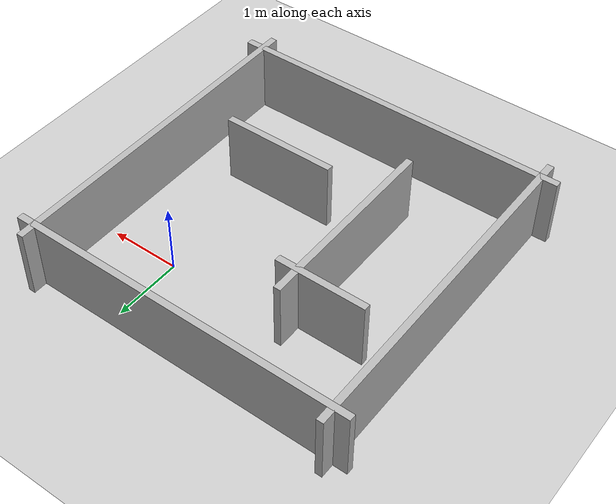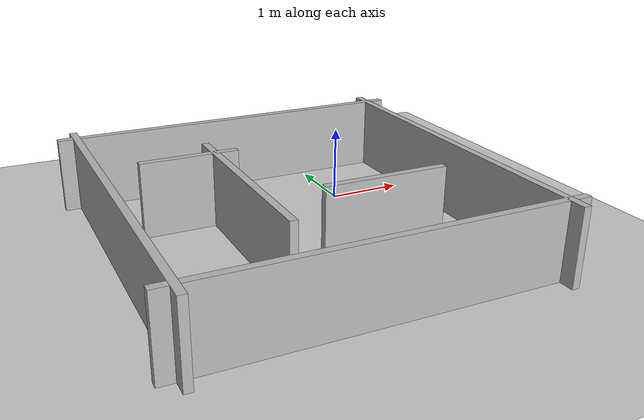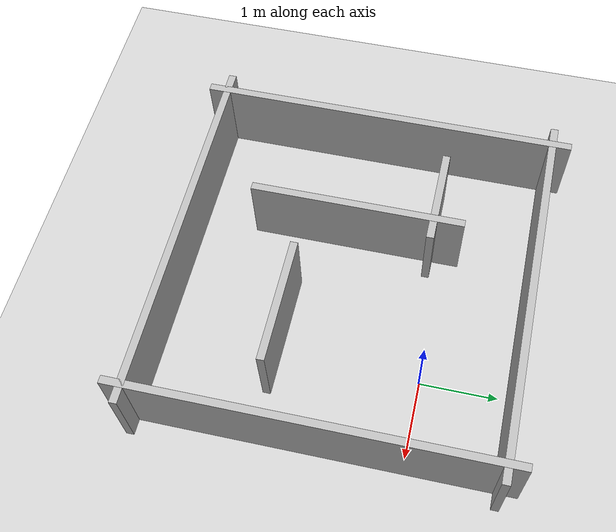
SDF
<sdf version="1.6">
  <world name="simple_course">
    <physics name="1ms" type="ignored">
      <max_step_size>0.01</max_step_size>
      <real_time_factor>1.0</real_time_factor>
    </physics>
    <plugin
      filename="gz-sim-physics-system"
      name="gz::sim::systems::Physics">
    </plugin>
    <plugin
      filename="gz-sim-user-commands-system"
      name="gz::sim::systems::UserCommands">
    </plugin>
    <plugin
      filename="gz-sim-scene-broadcaster-system"
      name="gz::sim::systems::SceneBroadcaster">
    </plugin>
    <plugin
      filename="gz-sim-sensors-system"
      name="gz::sim::systems::Sensors">
      <render_engine>ogre2</render_engine>
    </plugin>
    <plugin
      filename="gz-sim-imu-system"
      name="gz::sim::systems::Imu">  <!-- Added plugin for IMU sensor support -->
    </plugin>
    <plugin
      filename="gz-sim-contact-system"
      name="gz::sim::systems::Contact">
    </plugin>

    <light type="directional" name="sun">
      <cast_shadows>true</cast_shadows>
      <pose>2.5 2.5 10 0 0 0</pose>
      <diffuse>0.8 0.8 0.8 1</diffuse>
      <specular>0.2 0.2 0.2 1</specular>
      <attenuation>
        <range>1000</range>
        <constant>0.9</constant>
        <linear>0.01</linear>
        <quadratic>0.001</quadratic>
      </attenuation>
      <direction>-0.5 0.1 -0.9</direction>
    </light>

    <model name="ground_plane">
      <static>true</static>
      <link name="link">
        <collision name="collision">
          <geometry>
            <plane>
              <normal>0 0 1</normal>
              <size>20 20</size>
            </plane>
          </geometry>
        </collision>
        <visual name="visual">
          <geometry>
            <plane>
              <normal>0 0 1</normal>
              <size>20 20</size>
            </plane>
          </geometry>
          <material>
            <ambient>0.8 0.8 0.8 1</ambient>
            <diffuse>0.8 0.8 0.8 1</diffuse>
            <specular>0.8 0.8 0.8 1</specular>
          </material>
        </visual>
      </link>
    </model>

    <model name="north_wall">
      <static>true</static>
      <pose>-1.1 1.15 0.5 0 0 0</pose>
      <link name="link">
        <collision name="collision">
          <geometry>
            <box>
              <size>5.0 0.1 1.0</size>
            </box>
          </geometry>
        </collision>
        <visual name="visual">
          <geometry>
            <box>
              <size>5.0 0.1 1.0</size>
            </box>
          </geometry>
        </visual>
      </link>
    </model>

    <model name="south_wall">
      <static>true</static>
      <pose>-1.1 -3.35 0.5 0 0 0</pose>
      <link name="link">
        <collision name="collision">
          <geometry>
            <box>
              <size>5.0 0.1 1.0</size>
            </box>
          </geometry>
        </collision>
        <visual name="visual">
          <geometry>
            <box>
              <size>5.0 0.1 1.0</size>
            </box>
          </geometry>
        </visual>
      </link>
    </model>

    <model name="west_wall">
      <static>true</static>
      <pose>-3.35 -1.1 0.5 0 0 0</pose>
      <link name="link">
        <collision name="collision">
          <geometry>
            <box>
              <size>0.1 5.0 1.0</size>
            </box>
          </geometry>
        </collision>
        <visual name="visual">
          <geometry>
            <box>
              <size>0.1 5.0 1.0</size>
            </box>
          </geometry>
        </visual>
      </link>
    </model>

    <model name="east_wall">
      <static>true</static>
      <pose>1.15 -1.1 0.5 0 0 0</pose>
      <link name="link">
        <collision name="collision">
          <geometry>
            <box>
              <size>0.1 5.0 1.0</size>
            </box>
          </geometry>
        </collision>
        <visual name="visual">
          <geometry>
            <box>
              <size>0.1 5.0 1.0</size>
            </box>
          </geometry>
        </visual>
      </link>
    </model>

    <model name="vertical_barrier">
      <static>true</static>
      <pose>-1.85 -1.2 0.5 0 0 0</pose>
      <link name="link">
        <collision name="collision">
          <geometry>
            <box>
              <size>0.1 2.8 1.0</size>
            </box>
          </geometry>
        </collision>
        <visual name="visual">
          <geometry>
            <box>
              <size>0.1 2.8 1.0</size>
            </box>
          </geometry>
        </visual>
      </link>
    </model>

    <model name="upper_barrier">
      <static>true</static>
      <pose>-0.30 -1.85 0.5 0 0 0</pose>
      <link name="link">
        <collision name="collision">
          <geometry>
            <box>
              <size>1.65 0.1 1.0</size>
            </box>
          </geometry>
        </collision>
        <visual name="visual">
          <geometry>
            <box>
              <size>1.65 0.1 1.0</size>
            </box>
          </geometry>
        </visual>
      </link>
    </model>

    <model name="lower_barrier">
      <static>true</static>
      <pose>-2.2 -0.20 0.5 0 0 0</pose>
      <link name="link">
        <collision name="collision">
          <geometry>
            <box>
              <size>1.30 0.1 1.0</size>
            </box>
          </geometry>
        </collision>
        <visual name="visual">
          <geometry>
            <box>
              <size>1.30 0.1 1.0</size>
            </box>
          </geometry>
        </visual>
      </link>
    </model>
  </world>
</sdf>
